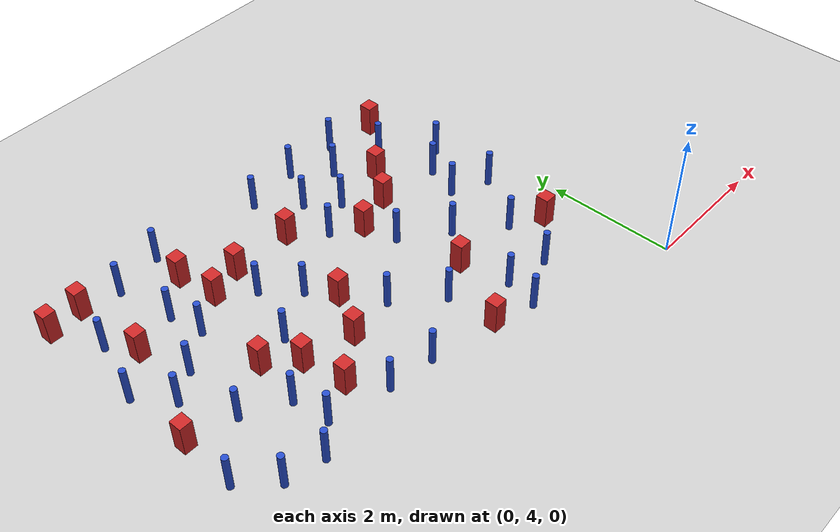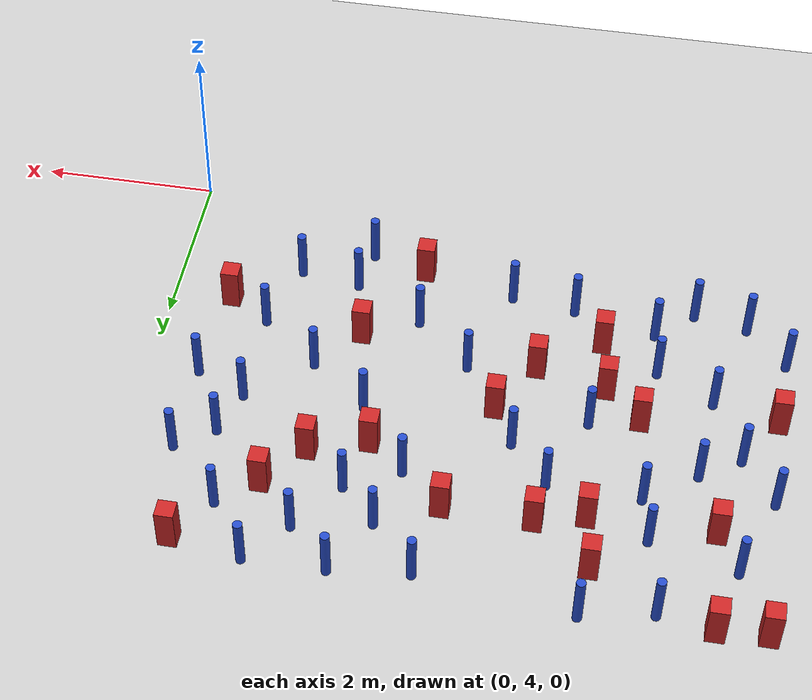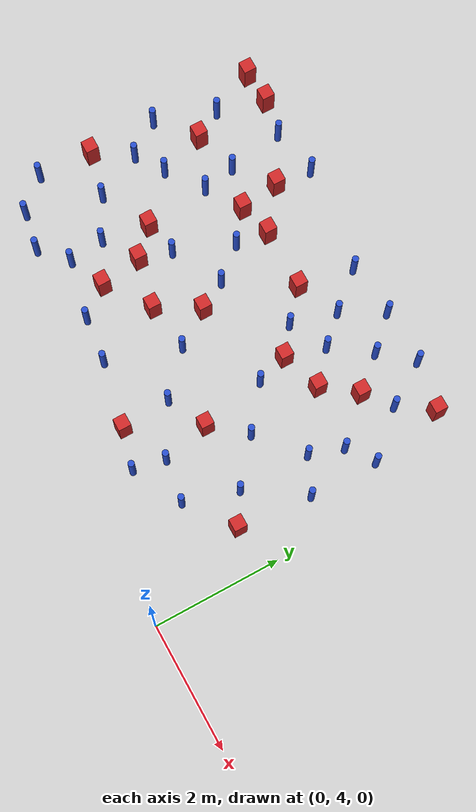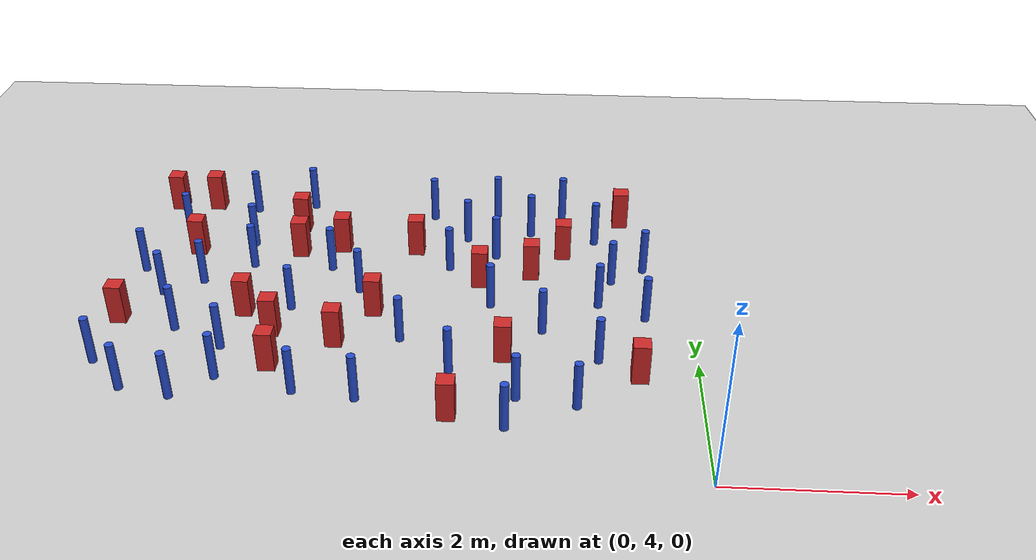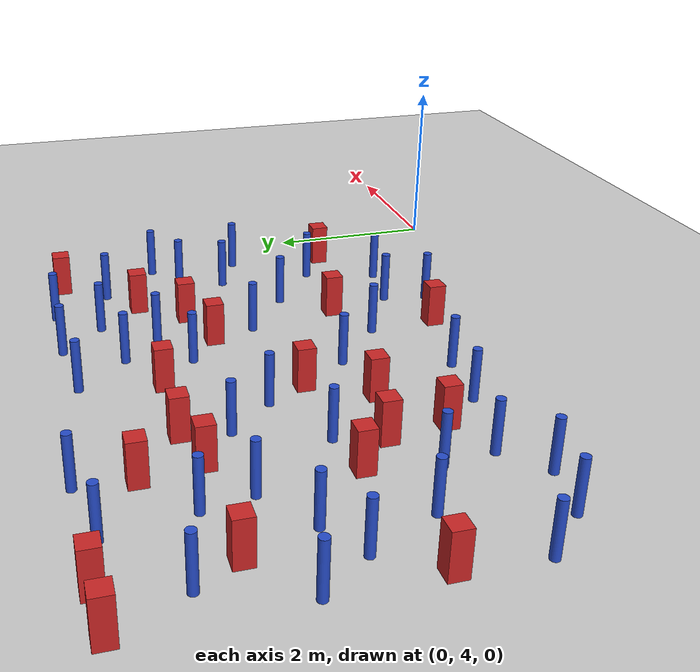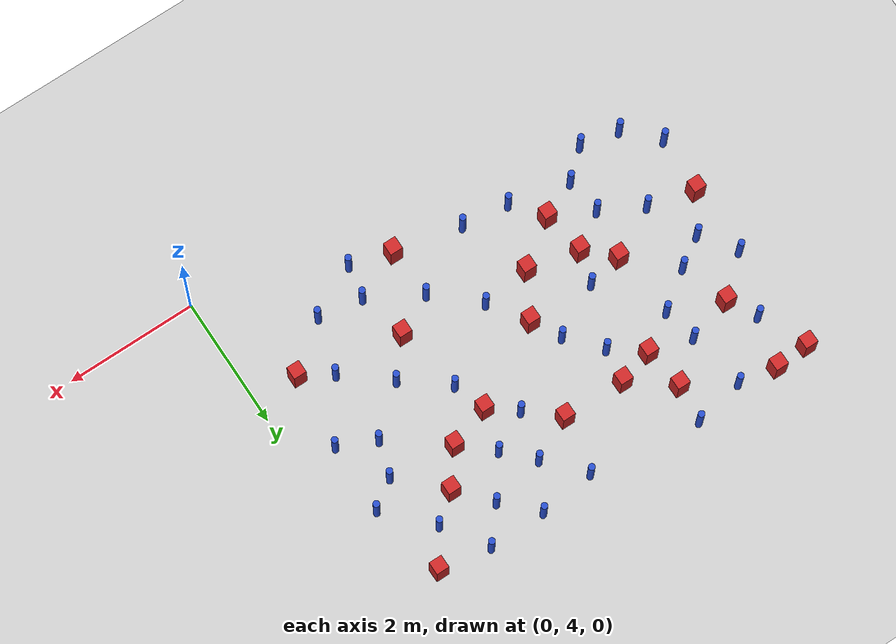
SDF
<sdf version="1.6">
 <world name="default">
  <model name="ground_plane">
   <static>1</static>
   <link name="link">
    <collision name="collision">
     <geometry><plane><normal>0 0 1</normal><size>100 100</size></plane></geometry>
     <surface><friction><ode><mu>100</mu><mu2>50</mu2></ode></friction></surface>
    </collision>
    <visual name="visual">
     <cast_shadows>0</cast_shadows>
     <geometry><plane><normal>0 0 1</normal><size>100 100</size></plane></geometry>
     <material>
      <ambient>1.0 1.0 1.0 1.0</ambient>
      <diffuse>0.8 0.8 0.8 1.0</diffuse>
      <specular>0.01 0.01 0.01 1.000000</specular>
     </material>
    </visual>
   </link>
  </model>
  <model name="pole_obstacle6">
   <static>true</static>
   <pose>-1.13884533249 6.00640084406 7.38925637345e-09 -8.47170692799e-08 1.24976765033e-08 -1.74513093018e-07</pose>
   <link name="link">
    <pose>0 0 0.3 0 -0 0</pose>
    <inertial>
     <mass>1</mass>
     <inertia><ixx>0.145833</ixx><ixy>0</ixy><ixz>0</ixz><iyy>0.145833</iyy><iyz>0</iyz><izz>0.125</izz></inertia>
    </inertial>
    <collision name="collision">
     <geometry><cylinder><radius>0.05</radius><length>.6</length></cylinder></geometry>
    </collision>
    <visual name="visual">
     <geometry><cylinder><radius>0.05</radius><length>.6</length></cylinder></geometry>
     <material>
      <script><name>Gazebo/Blue</name><uri>file://media/materials/scripts/gazebo.material</uri></script>
     </material>
    </visual>
   </link>
  </model>
  <model name="pole_obstacle17">
   <static>true</static>
   <pose>-5.87986602313 5.09642680176 7.38925637345e-09 -8.47170692796e-08 1.24976764786e-08 -1.74513093032e-07</pose>
   <link name="link">
    <pose>0 0 0.3 0 -0 0</pose>
    <inertial>
     <mass>1</mass>
     <inertia><ixx>0.145833</ixx><ixy>0</ixy><ixz>0</ixz><iyy>0.145833</iyy><iyz>0</iyz><izz>0.125</izz></inertia>
    </inertial>
    <collision name="collision">
     <geometry><cylinder><radius>0.05</radius><length>.6</length></cylinder></geometry>
    </collision>
    <visual name="visual">
     <geometry><cylinder><radius>0.05</radius><length>.6</length></cylinder></geometry>
     <material>
      <script><name>Gazebo/Blue</name><uri>file://media/materials/scripts/gazebo.material</uri></script>
     </material>
    </visual>
   </link>
  </model>
  <model name="pole_obstacle27">
   <static>true</static>
   <pose>-6.51548314377 7.11231519088 7.38925637345e-09 -8.47170692796e-08 1.24976764786e-08 -1.74513093032e-07</pose>
   <link name="link">
    <pose>0 0 0.3 0 -0 0</pose>
    <inertial>
     <mass>1</mass>
     <inertia><ixx>0.145833</ixx><ixy>0</ixy><ixz>0</ixz><iyy>0.145833</iyy><iyz>0</iyz><izz>0.125</izz></inertia>
    </inertial>
    <collision name="collision">
     <geometry><cylinder><radius>0.05</radius><length>.6</length></cylinder></geometry>
    </collision>
    <visual name="visual">
     <geometry><cylinder><radius>0.05</radius><length>.6</length></cylinder></geometry>
     <material>
      <script><name>Gazebo/Blue</name><uri>file://media/materials/scripts/gazebo.material</uri></script>
     </material>
    </visual>
   </link>
  </model>
  <model name="square_post_obstacle32">
   <static>true</static>
   <pose>-0.682173237768 5.71564779712 1.91545236811e-07 -7.35059704564e-06 1.12565212e-07 2.39332434364e-05</pose>
   <link name="link">
    <pose>0 0 0.25 0 -0 0</pose>
    <inertial>
     <mass>100</mass>
     <inertia>
      <ixx>0.166667</ixx>
      <ixy>0</ixy>
      <ixz>0</ixz>
      <iyy>0.166667</iyy>
      <iyz>0</iyz>
      <izz>0.166667</izz>
     </inertia>
    </inertial>
    <collision name="collision"><geometry><box><size>.2 .2 .5</size></box></geometry></collision>
    <visual name="visual">
     <geometry><box><size>.2 .2 .5</size></box></geometry>
     <material>
      <script><name>Gazebo/Red</name><uri>file://media/materials/scripts/gazebo.material</uri></script>
     </material>
    </visual>
   </link>
  </model>
  <model name="square_post_obstacle33">
   <static>true</static>
   <pose>-4.22268816906 6.20369908006 1.91545236811e-07 -7.35059704564e-06 1.12565212e-07 2.39332434364e-05</pose>
   <link name="link">
    <pose>0 0 0.25 0 -0 0</pose>
    <inertial>
     <mass>100</mass>
     <inertia>
      <ixx>0.166667</ixx>
      <ixy>0</ixy>
      <ixz>0</ixz>
      <iyy>0.166667</iyy>
      <iyz>0</iyz>
      <izz>0.166667</izz>
     </inertia>
    </inertial>
    <collision name="collision"><geometry><box><size>.2 .2 .5</size></box></geometry></collision>
    <visual name="visual">
     <geometry><box><size>.2 .2 .5</size></box></geometry>
     <material>
      <script><name>Gazebo/Red</name><uri>file://media/materials/scripts/gazebo.material</uri></script>
     </material>
    </visual>
   </link>
  </model>
  <model name="pole_obstacle29">
   <static>true</static>
   <pose>-6.56118129057 8.5687259054 7.38925637345e-09 -8.471706928e-08 1.24976765081e-08 -1.74513093015e-07</pose>
   <link name="link">
    <pose>0 0 0.3 0 -0 0</pose>
    <inertial>
     <mass>1</mass>
     <inertia><ixx>0.145833</ixx><ixy>0</ixy><ixz>0</ixz><iyy>0.145833</iyy><iyz>0</iyz><izz>0.125</izz></inertia>
    </inertial>
    <collision name="collision">
     <geometry><cylinder><radius>0.05</radius><length>.6</length></cylinder></geometry>
    </collision>
    <visual name="visual">
     <geometry><cylinder><radius>0.05</radius><length>.6</length></cylinder></geometry>
     <material>
      <script><name>Gazebo/Blue</name><uri>file://media/materials/scripts/gazebo.material</uri></script>
     </material>
    </visual>
   </link>
  </model>
  <model name="pole_obstacle32">
   <static>true</static>
   <pose>-3.82620133427 5.16682028042 7.38925637345e-09 -8.47170692798e-08 1.24976765033e-08 -1.74513093019e-07</pose>
   <link name="link">
    <pose>0 0 0.3 0 -0 0</pose>
    <inertial>
     <mass>1</mass>
     <inertia><ixx>0.145833</ixx><ixy>0</ixy><ixz>0</ixz><iyy>0.145833</iyy><iyz>0</iyz><izz>0.125</izz></inertia>
    </inertial>
    <collision name="collision">
     <geometry><cylinder><radius>0.05</radius><length>.6</length></cylinder></geometry>
    </collision>
    <visual name="visual">
     <geometry><cylinder><radius>0.05</radius><length>.6</length></cylinder></geometry>
     <material>
      <script><name>Gazebo/Blue</name><uri>file://media/materials/scripts/gazebo.material</uri></script>
     </material>
    </visual>
   </link>
  </model>
  <model name="pole_obstacle44">
   <static>true</static>
   <pose>-4.50960013686 7.79032409078 7.38925637345e-09 -8.47170692796e-08 1.24976764786e-08 -1.74513093032e-07</pose>
   <link name="link">
    <pose>0 0 0.3 0 -0 0</pose>
    <inertial>
     <mass>1</mass>
     <inertia><ixx>0.145833</ixx><ixy>0</ixy><ixz>0</ixz><iyy>0.145833</iyy><iyz>0</iyz><izz>0.125</izz></inertia>
    </inertial>
    <collision name="collision">
     <geometry><cylinder><radius>0.05</radius><length>.6</length></cylinder></geometry>
    </collision>
    <visual name="visual">
     <geometry><cylinder><radius>0.05</radius><length>.6</length></cylinder></geometry>
     <material>
      <script><name>Gazebo/Blue</name><uri>file://media/materials/scripts/gazebo.material</uri></script>
     </material>
    </visual>
   </link>
  </model>
  <model name="square_post_obstacle43">
   <static>true</static>
   <pose>-5.40889203674 6.76834407915 1.91545236811e-07 -7.35059704564e-06 1.12565212e-07 2.39332434364e-05</pose>
   <link name="link">
    <pose>0 0 0.25 0 -0 0</pose>
    <inertial>
     <mass>100</mass>
     <inertia>
      <ixx>0.166667</ixx>
      <ixy>0</ixy>
      <ixz>0</ixz>
      <iyy>0.166667</iyy>
      <iyz>0</iyz>
      <izz>0.166667</izz>
     </inertia>
    </inertial>
    <collision name="collision"><geometry><box><size>.2 .2 .5</size></box></geometry></collision>
    <visual name="visual">
     <geometry><box><size>.2 .2 .5</size></box></geometry>
     <material>
      <script><name>Gazebo/Red</name><uri>file://media/materials/scripts/gazebo.material</uri></script>
     </material>
    </visual>
   </link>
  </model>
  <model name="pole_obstacle49">
   <static>true</static>
   <pose>-6.92528283574 5.68423858013 7.38925637345e-09 -8.47170692796e-08 1.24976764786e-08 -1.74513093032e-07</pose>
   <link name="link">
    <pose>0 0 0.3 0 -0 0</pose>
    <inertial>
     <mass>1</mass>
     <inertia><ixx>0.145833</ixx><ixy>0</ixy><ixz>0</ixz><iyy>0.145833</iyy><iyz>0</iyz><izz>0.125</izz></inertia>
    </inertial>
    <collision name="collision">
     <geometry><cylinder><radius>0.05</radius><length>.6</length></cylinder></geometry>
    </collision>
    <visual name="visual">
     <geometry><cylinder><radius>0.05</radius><length>.6</length></cylinder></geometry>
     <material>
      <script><name>Gazebo/Blue</name><uri>file://media/materials/scripts/gazebo.material</uri></script>
     </material>
    </visual>
   </link>
  </model>
  <model name="square_post_obstacle56">
   <static>true</static>
   <pose>-5.00658708489 6.38060278428 1.91545236811e-07 -7.35059704564e-06 1.12565212e-07 2.39332434364e-05</pose>
   <link name="link">
    <pose>0 0 0.25 0 -0 0</pose>
    <inertial>
     <mass>100</mass>
     <inertia>
      <ixx>0.166667</ixx>
      <ixy>0</ixy>
      <ixz>0</ixz>
      <iyy>0.166667</iyy>
      <iyz>0</iyz>
      <izz>0.166667</izz>
     </inertia>
    </inertial>
    <collision name="collision"><geometry><box><size>.2 .2 .5</size></box></geometry></collision>
    <visual name="visual">
     <geometry><box><size>.2 .2 .5</size></box></geometry>
     <material>
      <script><name>Gazebo/Red</name><uri>file://media/materials/scripts/gazebo.material</uri></script>
     </material>
    </visual>
   </link>
  </model>
  <model name="pole_obstacle58">
   <static>true</static>
   <pose>-2.82783120519 8.59757847024 7.38925637345e-09 -8.47170692793e-08 1.24976764408e-08 -1.74513093041e-07</pose>
   <link name="link">
    <pose>0 0 0.3 0 -0 0</pose>
    <inertial>
     <mass>1</mass>
     <inertia><ixx>0.145833</ixx><ixy>0</ixy><ixz>0</ixz><iyy>0.145833</iyy><iyz>0</iyz><izz>0.125</izz></inertia>
    </inertial>
    <collision name="collision">
     <geometry><cylinder><radius>0.05</radius><length>.6</length></cylinder></geometry>
    </collision>
    <visual name="visual">
     <geometry><cylinder><radius>0.05</radius><length>.6</length></cylinder></geometry>
     <material>
      <script><name>Gazebo/Blue</name><uri>file://media/materials/scripts/gazebo.material</uri></script>
     </material>
    </visual>
   </link>
  </model>
  <model name="square_post_obstacle64">
   <static>true</static>
   <pose>-2.60371157724 7.55640820449 1.91545236811e-07 -7.35059704564e-06 1.12565212e-07 2.39332434364e-05</pose>
   <link name="link">
    <pose>0 0 0.25 0 -0 0</pose>
    <inertial>
     <mass>100</mass>
     <inertia>
      <ixx>0.166667</ixx>
      <ixy>0</ixy>
      <ixz>0</ixz>
      <iyy>0.166667</iyy>
      <iyz>0</iyz>
      <izz>0.166667</izz>
     </inertia>
    </inertial>
    <collision name="collision"><geometry><box><size>.2 .2 .5</size></box></geometry></collision>
    <visual name="visual">
     <geometry><box><size>.2 .2 .5</size></box></geometry>
     <material>
      <script><name>Gazebo/Red</name><uri>file://media/materials/scripts/gazebo.material</uri></script>
     </material>
    </visual>
   </link>
  </model>
  <model name="square_post_obstacle66">
   <static>true</static>
   <pose>-1.57315942391 8.276207866 1.91545236811e-07 -7.35059704564e-06 1.12565212e-07 2.39332434364e-05</pose>
   <link name="link">
    <pose>0 0 0.25 0 -0 0</pose>
    <inertial>
     <mass>100</mass>
     <inertia>
      <ixx>0.166667</ixx>
      <ixy>0</ixy>
      <ixz>0</ixz>
      <iyy>0.166667</iyy>
      <iyz>0</iyz>
      <izz>0.166667</izz>
     </inertia>
    </inertial>
    <collision name="collision"><geometry><box><size>.2 .2 .5</size></box></geometry></collision>
    <visual name="visual">
     <geometry><box><size>.2 .2 .5</size></box></geometry>
     <material>
      <script><name>Gazebo/Red</name><uri>file://media/materials/scripts/gazebo.material</uri></script>
     </material>
    </visual>
   </link>
  </model>
  <model name="pole_obstacle65">
   <static>true</static>
   <pose>-5.7784749312 9.21658165933 7.38925637345e-09 -8.471706928e-08 1.24976765081e-08 -1.74513093015e-07</pose>
   <link name="link">
    <pose>0 0 0.3 0 -0 0</pose>
    <inertial>
     <mass>1</mass>
     <inertia><ixx>0.145833</ixx><ixy>0</ixy><ixz>0</ixz><iyy>0.145833</iyy><iyz>0</iyz><izz>0.125</izz></inertia>
    </inertial>
    <collision name="collision">
     <geometry><cylinder><radius>0.05</radius><length>.6</length></cylinder></geometry>
    </collision>
    <visual name="visual">
     <geometry><cylinder><radius>0.05</radius><length>.6</length></cylinder></geometry>
     <material>
      <script><name>Gazebo/Blue</name><uri>file://media/materials/scripts/gazebo.material</uri></script>
     </material>
    </visual>
   </link>
  </model>
  <model name="pole_obstacle68">
   <static>true</static>
   <pose>-5.62413219068 8.32864449254 7.38925637345e-09 -8.471706928e-08 1.24976765081e-08 -1.74513093015e-07</pose>
   <link name="link">
    <pose>0 0 0.3 0 -0 0</pose>
    <inertial>
     <mass>1</mass>
     <inertia><ixx>0.145833</ixx><ixy>0</ixy><ixz>0</ixz><iyy>0.145833</iyy><iyz>0</iyz><izz>0.125</izz></inertia>
    </inertial>
    <collision name="collision">
     <geometry><cylinder><radius>0.05</radius><length>.6</length></cylinder></geometry>
    </collision>
    <visual name="visual">
     <geometry><cylinder><radius>0.05</radius><length>.6</length></cylinder></geometry>
     <material>
      <script><name>Gazebo/Blue</name><uri>file://media/materials/scripts/gazebo.material</uri></script>
     </material>
    </visual>
   </link>
  </model>
  <model name="pole_obstacle76">
   <static>true</static>
   <pose>-1.99838171747 8.77394415467 7.38925637345e-09 -8.47170692797e-08 1.24976764886e-08 -1.74513093027e-07</pose>
   <link name="link">
    <pose>0 0 0.3 0 -0 0</pose>
    <inertial>
     <mass>1</mass>
     <inertia><ixx>0.145833</ixx><ixy>0</ixy><ixz>0</ixz><iyy>0.145833</iyy><iyz>0</iyz><izz>0.125</izz></inertia>
    </inertial>
    <collision name="collision">
     <geometry><cylinder><radius>0.05</radius><length>.6</length></cylinder></geometry>
    </collision>
    <visual name="visual">
     <geometry><cylinder><radius>0.05</radius><length>.6</length></cylinder></geometry>
     <material>
      <script><name>Gazebo/Blue</name><uri>file://media/materials/scripts/gazebo.material</uri></script>
     </material>
    </visual>
   </link>
  </model>
  <model name="square_post_obstacle77">
   <static>true</static>
   <pose>-2.79258658505 4.94894404186 1.91545236811e-07 -7.35059704564e-06 1.12565212e-07 2.39332434364e-05</pose>
   <link name="link">
    <pose>0 0 0.25 0 -0 0</pose>
    <inertial>
     <mass>100</mass>
     <inertia>
      <ixx>0.166667</ixx>
      <ixy>0</ixy>
      <ixz>0</ixz>
      <iyy>0.166667</iyy>
      <iyz>0</iyz>
      <izz>0.166667</izz>
     </inertia>
    </inertial>
    <collision name="collision"><geometry><box><size>.2 .2 .5</size></box></geometry></collision>
    <visual name="visual">
     <geometry><box><size>.2 .2 .5</size></box></geometry>
     <material>
      <script><name>Gazebo/Red</name><uri>file://media/materials/scripts/gazebo.material</uri></script>
     </material>
    </visual>
   </link>
  </model>
  <model name="square_post_obstacle79">
   <static>true</static>
   <pose>-3.47526842599 8.28174946734 1.91545236811e-07 -7.35059704564e-06 1.12565212e-07 2.39332434364e-05</pose>
   <link name="link">
    <pose>0 0 0.25 0 -0 0</pose>
    <inertial>
     <mass>100</mass>
     <inertia>
      <ixx>0.166667</ixx>
      <ixy>0</ixy>
      <ixz>0</ixz>
      <iyy>0.166667</iyy>
      <iyz>0</iyz>
      <izz>0.166667</izz>
     </inertia>
    </inertial>
    <collision name="collision"><geometry><box><size>.2 .2 .5</size></box></geometry></collision>
    <visual name="visual">
     <geometry><box><size>.2 .2 .5</size></box></geometry>
     <material>
      <script><name>Gazebo/Red</name><uri>file://media/materials/scripts/gazebo.material</uri></script>
     </material>
    </visual>
   </link>
  </model>
  <model name="pole_obstacle82">
   <static>true</static>
   <pose>-6.16802672329 6.37050134223 7.38925637345e-09 -8.47170692796e-08 1.24976764786e-08 -1.74513093032e-07</pose>
   <link name="link">
    <pose>0 0 0.3 0 -0 0</pose>
    <inertial>
     <mass>1</mass>
     <inertia><ixx>0.145833</ixx><ixy>0</ixy><ixz>0</ixz><iyy>0.145833</iyy><iyz>0</iyz><izz>0.125</izz></inertia>
    </inertial>
    <collision name="collision">
     <geometry><cylinder><radius>0.05</radius><length>.6</length></cylinder></geometry>
    </collision>
    <visual name="visual">
     <geometry><cylinder><radius>0.05</radius><length>.6</length></cylinder></geometry>
     <material>
      <script><name>Gazebo/Blue</name><uri>file://media/materials/scripts/gazebo.material</uri></script>
     </material>
    </visual>
   </link>
  </model>
  <model name="square_post_obstacle83">
   <static>true</static>
   <pose>-0.810591307809 9.12485963482 1.91545236811e-07 -7.35059704564e-06 1.12565212e-07 2.39332434364e-05</pose>
   <link name="link">
    <pose>0 0 0.25 0 -0 0</pose>
    <inertial>
     <mass>100</mass>
     <inertia>
      <ixx>0.166667</ixx>
      <ixy>0</ixy>
      <ixz>0</ixz>
      <iyy>0.166667</iyy>
      <iyz>0</iyz>
      <izz>0.166667</izz>
     </inertia>
    </inertial>
    <collision name="collision"><geometry><box><size>.2 .2 .5</size></box></geometry></collision>
    <visual name="visual">
     <geometry><box><size>.2 .2 .5</size></box></geometry>
     <material>
      <script><name>Gazebo/Red</name><uri>file://media/materials/scripts/gazebo.material</uri></script>
     </material>
    </visual>
   </link>
  </model>
  <model name="pole_obstacle118">
   <static>true</static>
   <pose>-4.08687819816 7.29918859179 7.38925637345e-09 -8.47170692796e-08 1.24976764786e-08 -1.74513093032e-07</pose>
   <link name="link">
    <pose>0 0 0.3 0 -0 0</pose>
    <inertial>
     <mass>1</mass>
     <inertia><ixx>0.145833</ixx><ixy>0</ixy><ixz>0</ixz><iyy>0.145833</iyy><iyz>0</iyz><izz>0.125</izz></inertia>
    </inertial>
    <collision name="collision">
     <geometry><cylinder><radius>0.05</radius><length>.6</length></cylinder></geometry>
    </collision>
    <visual name="visual">
     <geometry><cylinder><radius>0.05</radius><length>.6</length></cylinder></geometry>
     <material>
      <script><name>Gazebo/Blue</name><uri>file://media/materials/scripts/gazebo.material</uri></script>
     </material>
    </visual>
   </link>
  </model>
  <model name="square_post_obstacle104">
   <static>true</static>
   <pose>-4.43977478486 8.29522739074 1.91545236811e-07 -7.35059704564e-06 1.12565212e-07 2.39332434364e-05</pose>
   <link name="link">
    <pose>0 0 0.25 0 -0 0</pose>
    <inertial>
     <mass>100</mass>
     <inertia>
      <ixx>0.166667</ixx>
      <ixy>0</ixy>
      <ixz>0</ixz>
      <iyy>0.166667</iyy>
      <iyz>0</iyz>
      <izz>0.166667</izz>
     </inertia>
    </inertial>
    <collision name="collision"><geometry><box><size>.2 .2 .5</size></box></geometry></collision>
    <visual name="visual">
     <geometry><box><size>.2 .2 .5</size></box></geometry>
     <material>
      <script><name>Gazebo/Red</name><uri>file://media/materials/scripts/gazebo.material</uri></script>
     </material>
    </visual>
   </link>
  </model>
  <model name="square_post_obstacle108">
   <static>true</static>
   <pose>-6.87936138806 6.54421704036 1.91545236811e-07 -7.35059704564e-06 1.12565212e-07 2.39332434364e-05</pose>
   <link name="link">
    <pose>0 0 0.25 0 -0 0</pose>
    <inertial>
     <mass>100</mass>
     <inertia>
      <ixx>0.166667</ixx>
      <ixy>0</ixy>
      <ixz>0</ixz>
      <iyy>0.166667</iyy>
      <iyz>0</iyz>
      <izz>0.166667</izz>
     </inertia>
    </inertial>
    <collision name="collision"><geometry><box><size>.2 .2 .5</size></box></geometry></collision>
    <visual name="visual">
     <geometry><box><size>.2 .2 .5</size></box></geometry>
     <material>
      <script><name>Gazebo/Red</name><uri>file://media/materials/scripts/gazebo.material</uri></script>
     </material>
    </visual>
   </link>
  </model>
  <model name="square_post_obstacle111">
   <static>true</static>
   <pose>-4.97311083903 8.15002786722 1.91545236811e-07 -7.35059704564e-06 1.12565212e-07 2.39332434364e-05</pose>
   <link name="link">
    <pose>0 0 0.25 0 -0 0</pose>
    <inertial>
     <mass>100</mass>
     <inertia>
      <ixx>0.166667</ixx>
      <ixy>0</ixy>
      <ixz>0</ixz>
      <iyy>0.166667</iyy>
      <iyz>0</iyz>
      <izz>0.166667</izz>
     </inertia>
    </inertial>
    <collision name="collision"><geometry><box><size>.2 .2 .5</size></box></geometry></collision>
    <visual name="visual">
     <geometry><box><size>.2 .2 .5</size></box></geometry>
     <material>
      <script><name>Gazebo/Red</name><uri>file://media/materials/scripts/gazebo.material</uri></script>
     </material>
    </visual>
   </link>
  </model>
  <model name="pole_obstacle121">
   <static>true</static>
   <pose>-2.06098376952 5.27774926588 7.38925637345e-09 -8.47170692798e-08 1.24976765033e-08 -1.74513093019e-07</pose>
   <link name="link">
    <pose>0 0 0.3 0 -0 0</pose>
    <inertial>
     <mass>1</mass>
     <inertia><ixx>0.145833</ixx><ixy>0</ixy><ixz>0</ixz><iyy>0.145833</iyy><iyz>0</iyz><izz>0.125</izz></inertia>
    </inertial>
    <collision name="collision">
     <geometry><cylinder><radius>0.05</radius><length>.6</length></cylinder></geometry>
    </collision>
    <visual name="visual">
     <geometry><cylinder><radius>0.05</radius><length>.6</length></cylinder></geometry>
     <material>
      <script><name>Gazebo/Blue</name><uri>file://media/materials/scripts/gazebo.material</uri></script>
     </material>
    </visual>
   </link>
  </model>
  <model name="pole_obstacle124">
   <static>true</static>
   <pose>-1.1556804983 8.61058792297 7.38925637345e-09 -8.47170692798e-08 1.24976764881e-08 -1.74513093027e-07</pose>
   <link name="link">
    <pose>0 0 0.3 0 -0 0</pose>
    <inertial>
     <mass>1</mass>
     <inertia><ixx>0.145833</ixx><ixy>0</ixy><ixz>0</ixz><iyy>0.145833</iyy><iyz>0</iyz><izz>0.125</izz></inertia>
    </inertial>
    <collision name="collision">
     <geometry><cylinder><radius>0.05</radius><length>.6</length></cylinder></geometry>
    </collision>
    <visual name="visual">
     <geometry><cylinder><radius>0.05</radius><length>.6</length></cylinder></geometry>
     <material>
      <script><name>Gazebo/Blue</name><uri>file://media/materials/scripts/gazebo.material</uri></script>
     </material>
    </visual>
   </link>
  </model>
  <model name="pole_obstacle125">
   <static>true</static>
   <pose>-6.88834465642 7.63098107103 7.38925637345e-09 -8.47170692796e-08 1.24976764786e-08 -1.74513093032e-07</pose>
   <link name="link">
    <pose>0 0 0.3 0 -0 0</pose>
    <inertial>
     <mass>1</mass>
     <inertia><ixx>0.145833</ixx><ixy>0</ixy><ixz>0</ixz><iyy>0.145833</iyy><iyz>0</iyz><izz>0.125</izz></inertia>
    </inertial>
    <collision name="collision">
     <geometry><cylinder><radius>0.05</radius><length>.6</length></cylinder></geometry>
    </collision>
    <visual name="visual">
     <geometry><cylinder><radius>0.05</radius><length>.6</length></cylinder></geometry>
     <material>
      <script><name>Gazebo/Blue</name><uri>file://media/materials/scripts/gazebo.material</uri></script>
     </material>
    </visual>
   </link>
  </model>
  <model name="pole_obstacle130">
   <static>true</static>
   <pose>-3.31956122975 9.15283374948 7.38925637345e-09 -8.47170692793e-08 1.24976764408e-08 -1.74513093041e-07</pose>
   <link name="link">
    <pose>0 0 0.3 0 -0 0</pose>
    <inertial>
     <mass>1</mass>
     <inertia><ixx>0.145833</ixx><ixy>0</ixy><ixz>0</ixz><iyy>0.145833</iyy><iyz>0</iyz><izz>0.125</izz></inertia>
    </inertial>
    <collision name="collision">
     <geometry><cylinder><radius>0.05</radius><length>.6</length></cylinder></geometry>
    </collision>
    <visual name="visual">
     <geometry><cylinder><radius>0.05</radius><length>.6</length></cylinder></geometry>
     <material>
      <script><name>Gazebo/Blue</name><uri>file://media/materials/scripts/gazebo.material</uri></script>
     </material>
    </visual>
   </link>
  </model>
  <model name="pole_obstacle134">
   <static>true</static>
   <pose>-5.01243282055 9.36613757884 7.38925637345e-09 -8.471706928e-08 1.24976765081e-08 -1.74513093015e-07</pose>
   <link name="link">
    <pose>0 0 0.3 0 -0 0</pose>
    <inertial>
     <mass>1</mass>
     <inertia><ixx>0.145833</ixx><ixy>0</ixy><ixz>0</ixz><iyy>0.145833</iyy><iyz>0</iyz><izz>0.125</izz></inertia>
    </inertial>
    <collision name="collision">
     <geometry><cylinder><radius>0.05</radius><length>.6</length></cylinder></geometry>
    </collision>
    <visual name="visual">
     <geometry><cylinder><radius>0.05</radius><length>.6</length></cylinder></geometry>
     <material>
      <script><name>Gazebo/Blue</name><uri>file://media/materials/scripts/gazebo.material</uri></script>
     </material>
    </visual>
   </link>
  </model>
  <model name="pole_obstacle138">
   <static>true</static>
   <pose>-6.07867521664 7.39769607448 7.38925637345e-09 -8.47170692796e-08 1.24976764786e-08 -1.74513093032e-07</pose>
   <link name="link">
    <pose>0 0 0.3 0 -0 0</pose>
    <inertial>
     <mass>1</mass>
     <inertia><ixx>0.145833</ixx><ixy>0</ixy><ixz>0</ixz><iyy>0.145833</iyy><iyz>0</iyz><izz>0.125</izz></inertia>
    </inertial>
    <collision name="collision">
     <geometry><cylinder><radius>0.05</radius><length>.6</length></cylinder></geometry>
    </collision>
    <visual name="visual">
     <geometry><cylinder><radius>0.05</radius><length>.6</length></cylinder></geometry>
     <material>
      <script><name>Gazebo/Blue</name><uri>file://media/materials/scripts/gazebo.material</uri></script>
     </material>
    </visual>
   </link>
  </model>
  <model name="square_post_obstacle122">
   <static>true</static>
   <pose>-5.06567525563 8.78532850668 1.91545236811e-07 -7.35059704564e-06 1.12565212e-07 2.39332434364e-05</pose>
   <link name="link">
    <pose>0 0 0.25 0 -0 0</pose>
    <inertial>
     <mass>100</mass>
     <inertia>
      <ixx>0.166667</ixx>
      <ixy>0</ixy>
      <ixz>0</ixz>
      <iyy>0.166667</iyy>
      <iyz>0</iyz>
      <izz>0.166667</izz>
     </inertia>
    </inertial>
    <collision name="collision"><geometry><box><size>.2 .2 .5</size></box></geometry></collision>
    <visual name="visual">
     <geometry><box><size>.2 .2 .5</size></box></geometry>
     <material>
      <script><name>Gazebo/Red</name><uri>file://media/materials/scripts/gazebo.material</uri></script>
     </material>
    </visual>
   </link>
  </model>
  <model name="pole_obstacle142">
   <static>true</static>
   <pose>-5.52175535244 7.80500488019 7.38925637345e-09 -8.47170692796e-08 1.24976764786e-08 -1.74513093032e-07</pose>
   <link name="link">
    <pose>0 0 0.3 0 -0 0</pose>
    <inertial>
     <mass>1</mass>
     <inertia><ixx>0.145833</ixx><ixy>0</ixy><ixz>0</ixz><iyy>0.145833</iyy><iyz>0</iyz><izz>0.125</izz></inertia>
    </inertial>
    <collision name="collision">
     <geometry><cylinder><radius>0.05</radius><length>.6</length></cylinder></geometry>
    </collision>
    <visual name="visual">
     <geometry><cylinder><radius>0.05</radius><length>.6</length></cylinder></geometry>
     <material>
      <script><name>Gazebo/Blue</name><uri>file://media/materials/scripts/gazebo.material</uri></script>
     </material>
    </visual>
   </link>
  </model>
  <model name="pole_obstacle147">
   <static>true</static>
   <pose>-5.46323063522 5.47036744371 7.38925637345e-09 -8.47170692796e-08 1.24976764786e-08 -1.74513093032e-07</pose>
   <link name="link">
    <pose>0 0 0.3 0 -0 0</pose>
    <inertial>
     <mass>1</mass>
     <inertia><ixx>0.145833</ixx><ixy>0</ixy><ixz>0</ixz><iyy>0.145833</iyy><iyz>0</iyz><izz>0.125</izz></inertia>
    </inertial>
    <collision name="collision">
     <geometry><cylinder><radius>0.05</radius><length>.6</length></cylinder></geometry>
    </collision>
    <visual name="visual">
     <geometry><cylinder><radius>0.05</radius><length>.6</length></cylinder></geometry>
     <material>
      <script><name>Gazebo/Blue</name><uri>file://media/materials/scripts/gazebo.material</uri></script>
     </material>
    </visual>
   </link>
  </model>
  <model name="square_post_obstacle138">
   <static>true</static>
   <pose>-3.84605636096 6.8583834936 1.91545236811e-07 -7.35059704564e-06 1.12565212e-07 2.39332434364e-05</pose>
   <link name="link">
    <pose>0 0 0.25 0 -0 0</pose>
    <inertial>
     <mass>100</mass>
     <inertia>
      <ixx>0.166667</ixx>
      <ixy>0</ixy>
      <ixz>0</ixz>
      <iyy>0.166667</iyy>
      <iyz>0</iyz>
      <izz>0.166667</izz>
     </inertia>
    </inertial>
    <collision name="collision"><geometry><box><size>.2 .2 .5</size></box></geometry></collision>
    <visual name="visual">
     <geometry><box><size>.2 .2 .5</size></box></geometry>
     <material>
      <script><name>Gazebo/Red</name><uri>file://media/materials/scripts/gazebo.material</uri></script>
     </material>
    </visual>
   </link>
  </model>
  <model name="square_post_obstacle143">
   <static>true</static>
   <pose>-6.36199760315 9.31768818904 1.91545236811e-07 -7.35059704564e-06 1.12565212e-07 2.39332434364e-05</pose>
   <link name="link">
    <pose>0 0 0.25 0 -0 0</pose>
    <inertial>
     <mass>100</mass>
     <inertia>
      <ixx>0.166667</ixx>
      <ixy>0</ixy>
      <ixz>0</ixz>
      <iyy>0.166667</iyy>
      <iyz>0</iyz>
      <izz>0.166667</izz>
     </inertia>
    </inertial>
    <collision name="collision"><geometry><box><size>.2 .2 .5</size></box></geometry></collision>
    <visual name="visual">
     <geometry><box><size>.2 .2 .5</size></box></geometry>
     <material>
      <script><name>Gazebo/Red</name><uri>file://media/materials/scripts/gazebo.material</uri></script>
     </material>
    </visual>
   </link>
  </model>
  <model name="pole_obstacle156">
   <static>true</static>
   <pose>-2.84064937997 5.7282597873 7.38925637345e-09 -8.47170692798e-08 1.24976765033e-08 -1.74513093019e-07</pose>
   <link name="link">
    <pose>0 0 0.3 0 -0 0</pose>
    <inertial>
     <mass>1</mass>
     <inertia><ixx>0.145833</ixx><ixy>0</ixy><ixz>0</ixz><iyy>0.145833</iyy><iyz>0</iyz><izz>0.125</izz></inertia>
    </inertial>
    <collision name="collision">
     <geometry><cylinder><radius>0.05</radius><length>.6</length></cylinder></geometry>
    </collision>
    <visual name="visual">
     <geometry><cylinder><radius>0.05</radius><length>.6</length></cylinder></geometry>
     <material>
      <script><name>Gazebo/Blue</name><uri>file://media/materials/scripts/gazebo.material</uri></script>
     </material>
    </visual>
   </link>
  </model>
  <model name="square_post_obstacle147">
   <static>true</static>
   <pose>-6.31576094584 8.12589959222 1.91545236811e-07 -7.35059704564e-06 1.12565212e-07 2.39332434364e-05</pose>
   <link name="link">
    <pose>0 0 0.25 0 -0 0</pose>
    <inertial>
     <mass>100</mass>
     <inertia>
      <ixx>0.166667</ixx>
      <ixy>0</ixy>
      <ixz>0</ixz>
      <iyy>0.166667</iyy>
      <iyz>0</iyz>
      <izz>0.166667</izz>
     </inertia>
    </inertial>
    <collision name="collision"><geometry><box><size>.2 .2 .5</size></box></geometry></collision>
    <visual name="visual">
     <geometry><box><size>.2 .2 .5</size></box></geometry>
     <material>
      <script><name>Gazebo/Red</name><uri>file://media/materials/scripts/gazebo.material</uri></script>
     </material>
    </visual>
   </link>
  </model>
  <model name="square_post_obstacle151">
   <static>true</static>
   <pose>-2.24129650125 6.0259198513 1.91545236811e-07 -7.35059704564e-06 1.12565212e-07 2.39332434364e-05</pose>
   <link name="link">
    <pose>0 0 0.25 0 -0 0</pose>
    <inertial>
     <mass>100</mass>
     <inertia>
      <ixx>0.166667</ixx>
      <ixy>0</ixy>
      <ixz>0</ixz>
      <iyy>0.166667</iyy>
      <iyz>0</iyz>
      <izz>0.166667</izz>
     </inertia>
    </inertial>
    <collision name="collision"><geometry><box><size>.2 .2 .5</size></box></geometry></collision>
    <visual name="visual">
     <geometry><box><size>.2 .2 .5</size></box></geometry>
     <material>
      <script><name>Gazebo/Red</name><uri>file://media/materials/scripts/gazebo.material</uri></script>
     </material>
    </visual>
   </link>
  </model>
  <model name="pole_obstacle157">
   <static>true</static>
   <pose>-4.54331546318 5.2555426441 7.38925637345e-09 -8.47170692796e-08 1.24976764786e-08 -1.74513093032e-07</pose>
   <link name="link">
    <pose>0 0 0.3 0 -0 0</pose>
    <inertial>
     <mass>1</mass>
     <inertia><ixx>0.145833</ixx><ixy>0</ixy><ixz>0</ixz><iyy>0.145833</iyy><iyz>0</iyz><izz>0.125</izz></inertia>
    </inertial>
    <collision name="collision">
     <geometry><cylinder><radius>0.05</radius><length>.6</length></cylinder></geometry>
    </collision>
    <visual name="visual">
     <geometry><cylinder><radius>0.05</radius><length>.6</length></cylinder></geometry>
     <material>
      <script><name>Gazebo/Blue</name><uri>file://media/materials/scripts/gazebo.material</uri></script>
     </material>
    </visual>
   </link>
  </model>
  <model name="pole_obstacle167">
   <static>true</static>
   <pose>-0.566475502551 6.87211024993 7.38925637345e-09 -8.471706928e-08 1.24976765086e-08 -1.74513093015e-07</pose>
   <link name="link">
    <pose>0 0 0.3 0 -0 0</pose>
    <inertial>
     <mass>1</mass>
     <inertia><ixx>0.145833</ixx><ixy>0</ixy><ixz>0</ixz><iyy>0.145833</iyy><iyz>0</iyz><izz>0.125</izz></inertia>
    </inertial>
    <collision name="collision">
     <geometry><cylinder><radius>0.05</radius><length>.6</length></cylinder></geometry>
    </collision>
    <visual name="visual">
     <geometry><cylinder><radius>0.05</radius><length>.6</length></cylinder></geometry>
     <material>
      <script><name>Gazebo/Blue</name><uri>file://media/materials/scripts/gazebo.material</uri></script>
     </material>
    </visual>
   </link>
  </model>
  <model name="pole_obstacle172">
   <static>true</static>
   <pose>-2.16004226039 4.77153796678 7.38925637345e-09 -8.47170692798e-08 1.24976765033e-08 -1.74513093019e-07</pose>
   <link name="link">
    <pose>0 0 0.3 0 -0 0</pose>
    <inertial>
     <mass>1</mass>
     <inertia><ixx>0.145833</ixx><ixy>0</ixy><ixz>0</ixz><iyy>0.145833</iyy><iyz>0</iyz><izz>0.125</izz></inertia>
    </inertial>
    <collision name="collision">
     <geometry><cylinder><radius>0.05</radius><length>.6</length></cylinder></geometry>
    </collision>
    <visual name="visual">
     <geometry><cylinder><radius>0.05</radius><length>.6</length></cylinder></geometry>
     <material>
      <script><name>Gazebo/Blue</name><uri>file://media/materials/scripts/gazebo.material</uri></script>
     </material>
    </visual>
   </link>
  </model>
  <model name="pole_obstacle175">
   <static>true</static>
   <pose>-0.95672977006 7.66019634124 7.38925637345e-09 -8.47170692799e-08 1.2497676509e-08 -1.74513093015e-07</pose>
   <link name="link">
    <pose>0 0 0.3 0 -0 0</pose>
    <inertial>
     <mass>1</mass>
     <inertia><ixx>0.145833</ixx><ixy>0</ixy><ixz>0</ixz><iyy>0.145833</iyy><iyz>0</iyz><izz>0.125</izz></inertia>
    </inertial>
    <collision name="collision">
     <geometry><cylinder><radius>0.05</radius><length>.6</length></cylinder></geometry>
    </collision>
    <visual name="visual">
     <geometry><cylinder><radius>0.05</radius><length>.6</length></cylinder></geometry>
     <material>
      <script><name>Gazebo/Blue</name><uri>file://media/materials/scripts/gazebo.material</uri></script>
     </material>
    </visual>
   </link>
  </model>
  <model name="pole_obstacle180">
   <static>true</static>
   <pose>-3.46500875812 6.30083367614 7.38925637345e-09 -8.47170692798e-08 1.24976765033e-08 -1.74513093019e-07</pose>
   <link name="link">
    <pose>0 0 0.3 0 -0 0</pose>
    <inertial>
     <mass>1</mass>
     <inertia><ixx>0.145833</ixx><ixy>0</ixy><ixz>0</ixz><iyy>0.145833</iyy><iyz>0</iyz><izz>0.125</izz></inertia>
    </inertial>
    <collision name="collision">
     <geometry><cylinder><radius>0.05</radius><length>.6</length></cylinder></geometry>
    </collision>
    <visual name="visual">
     <geometry><cylinder><radius>0.05</radius><length>.6</length></cylinder></geometry>
     <material>
      <script><name>Gazebo/Blue</name><uri>file://media/materials/scripts/gazebo.material</uri></script>
     </material>
    </visual>
   </link>
  </model>
  <model name="square_post_obstacle175">
   <static>true</static>
   <pose>-4.90207332613 5.71316245429 1.91545236811e-07 -7.35059704564e-06 1.12565212e-07 2.39332434364e-05</pose>
   <link name="link">
    <pose>0 0 0.25 0 -0 0</pose>
    <inertial>
     <mass>100</mass>
     <inertia>
      <ixx>0.166667</ixx>
      <ixy>0</ixy>
      <ixz>0</ixz>
      <iyy>0.166667</iyy>
      <iyz>0</iyz>
      <izz>0.166667</izz>
     </inertia>
    </inertial>
    <collision name="collision"><geometry><box><size>.2 .2 .5</size></box></geometry></collision>
    <visual name="visual">
     <geometry><box><size>.2 .2 .5</size></box></geometry>
     <material>
      <script><name>Gazebo/Red</name><uri>file://media/materials/scripts/gazebo.material</uri></script>
     </material>
    </visual>
   </link>
  </model>
  <model name="square_post_obstacle189">
   <static>true</static>
   <pose>-1.96632075116 7.76619386211 1.91545236811e-07 -7.35059704564e-06 1.12565212e-07 2.39332434364e-05</pose>
   <link name="link">
    <pose>0 0 0.25 0 -0 0</pose>
    <inertial>
     <mass>100</mass>
     <inertia>
      <ixx>0.166667</ixx>
      <ixy>0</ixy>
      <ixz>0</ixz>
      <iyy>0.166667</iyy>
      <iyz>0</iyz>
      <izz>0.166667</izz>
     </inertia>
    </inertial>
    <collision name="collision"><geometry><box><size>.2 .2 .5</size></box></geometry></collision>
    <visual name="visual">
     <geometry><box><size>.2 .2 .5</size></box></geometry>
     <material>
      <script><name>Gazebo/Red</name><uri>file://media/materials/scripts/gazebo.material</uri></script>
     </material>
    </visual>
   </link>
  </model>
  <model name="pole_obstacle192">
   <static>true</static>
   <pose>-1.58842033167 9.26269987893 7.38925637345e-09 -8.47170692798e-08 1.24976764881e-08 -1.74513093027e-07</pose>
   <link name="link">
    <pose>0 0 0.3 0 -0 0</pose>
    <inertial>
     <mass>1</mass>
     <inertia><ixx>0.145833</ixx><ixy>0</ixy><ixz>0</ixz><iyy>0.145833</iyy><iyz>0</iyz><izz>0.125</izz></inertia>
    </inertial>
    <collision name="collision">
     <geometry><cylinder><radius>0.05</radius><length>.6</length></cylinder></geometry>
    </collision>
    <visual name="visual">
     <geometry><cylinder><radius>0.05</radius><length>.6</length></cylinder></geometry>
     <material>
      <script><name>Gazebo/Blue</name><uri>file://media/materials/scripts/gazebo.material</uri></script>
     </material>
    </visual>
   </link>
  </model>
  <model name="pole_obstacle193">
   <static>true</static>
   <pose>-1.38541909779 5.170443365 7.38925637345e-09 -8.47170692799e-08 1.24976765033e-08 -1.74513093018e-07</pose>
   <link name="link">
    <pose>0 0 0.3 0 -0 0</pose>
    <inertial>
     <mass>1</mass>
     <inertia><ixx>0.145833</ixx><ixy>0</ixy><ixz>0</ixz><iyy>0.145833</iyy><iyz>0</iyz><izz>0.125</izz></inertia>
    </inertial>
    <collision name="collision">
     <geometry><cylinder><radius>0.05</radius><length>.6</length></cylinder></geometry>
    </collision>
    <visual name="visual">
     <geometry><cylinder><radius>0.05</radius><length>.6</length></cylinder></geometry>
     <material>
      <script><name>Gazebo/Blue</name><uri>file://media/materials/scripts/gazebo.material</uri></script>
     </material>
    </visual>
   </link>
  </model>
  <model name="square_post_obstacle192">
   <static>true</static>
   <pose>-6.88550091674 9.28493261813 1.91545236811e-07 -7.35059704564e-06 1.12565212e-07 2.39332434364e-05</pose>
   <link name="link">
    <pose>0 0 0.25 0 -0 0</pose>
    <inertial>
     <mass>100</mass>
     <inertia>
      <ixx>0.166667</ixx>
      <ixy>0</ixy>
      <ixz>0</ixz>
      <iyy>0.166667</iyy>
      <iyz>0</iyz>
      <izz>0.166667</izz>
     </inertia>
    </inertial>
    <collision name="collision"><geometry><box><size>.2 .2 .5</size></box></geometry></collision>
    <visual name="visual">
     <geometry><box><size>.2 .2 .5</size></box></geometry>
     <material>
      <script><name>Gazebo/Red</name><uri>file://media/materials/scripts/gazebo.material</uri></script>
     </material>
    </visual>
   </link>
  </model>
  <model name="pole_obstacle201">
   <static>true</static>
   <pose>-1.12600024895 7.13084772462 7.38925637345e-09 -8.47170692799e-08 1.24976765033e-08 -1.74513093018e-07</pose>
   <link name="link">
    <pose>0 0 0.3 0 -0 0</pose>
    <inertial>
     <mass>1</mass>
     <inertia><ixx>0.145833</ixx><ixy>0</ixy><ixz>0</ixz><iyy>0.145833</iyy><iyz>0</iyz><izz>0.125</izz></inertia>
    </inertial>
    <collision name="collision">
     <geometry><cylinder><radius>0.05</radius><length>.6</length></cylinder></geometry>
    </collision>
    <visual name="visual">
     <geometry><cylinder><radius>0.05</radius><length>.6</length></cylinder></geometry>
     <material>
      <script><name>Gazebo/Blue</name><uri>file://media/materials/scripts/gazebo.material</uri></script>
     </material>
    </visual>
   </link>
  </model>
  <model name="pole_obstacle205">
   <static>true</static>
   <pose>-3.00735592805 7.87514641402 7.38925637345e-09 -8.47170692794e-08 1.24976764468e-08 -1.7451309304e-07</pose>
   <link name="link">
    <pose>0 0 0.3 0 -0 0</pose>
    <inertial>
     <mass>1</mass>
     <inertia><ixx>0.145833</ixx><ixy>0</ixy><ixz>0</ixz><iyy>0.145833</iyy><iyz>0</iyz><izz>0.125</izz></inertia>
    </inertial>
    <collision name="collision">
     <geometry><cylinder><radius>0.05</radius><length>.6</length></cylinder></geometry>
    </collision>
    <visual name="visual">
     <geometry><cylinder><radius>0.05</radius><length>.6</length></cylinder></geometry>
     <material>
      <script><name>Gazebo/Blue</name><uri>file://media/materials/scripts/gazebo.material</uri></script>
     </material>
    </visual>
   </link>
  </model>
  <model name="pole_obstacle210">
   <static>true</static>
   <pose>-6.47429823305 5.21433243379 7.38925637345e-09 -8.47170692796e-08 1.24976764786e-08 -1.74513093032e-07</pose>
   <link name="link">
    <pose>0 0 0.3 0 -0 0</pose>
    <inertial>
     <mass>1</mass>
     <inertia><ixx>0.145833</ixx><ixy>0</ixy><ixz>0</ixz><iyy>0.145833</iyy><iyz>0</iyz><izz>0.125</izz></inertia>
    </inertial>
    <collision name="collision">
     <geometry><cylinder><radius>0.05</radius><length>.6</length></cylinder></geometry>
    </collision>
    <visual name="visual">
     <geometry><cylinder><radius>0.05</radius><length>.6</length></cylinder></geometry>
     <material>
      <script><name>Gazebo/Blue</name><uri>file://media/materials/scripts/gazebo.material</uri></script>
     </material>
    </visual>
   </link>
  </model>
  <model name="pole_obstacle212">
   <static>true</static>
   <pose>-4.86683588856 6.88129914327 7.38925637345e-09 -8.47170692796e-08 1.24976764786e-08 -1.74513093032e-07</pose>
   <link name="link">
    <pose>0 0 0.3 0 -0 0</pose>
    <inertial>
     <mass>1</mass>
     <inertia><ixx>0.145833</ixx><ixy>0</ixy><ixz>0</ixz><iyy>0.145833</iyy><iyz>0</iyz><izz>0.125</izz></inertia>
    </inertial>
    <collision name="collision">
     <geometry><cylinder><radius>0.05</radius><length>.6</length></cylinder></geometry>
    </collision>
    <visual name="visual">
     <geometry><cylinder><radius>0.05</radius><length>.6</length></cylinder></geometry>
     <material>
      <script><name>Gazebo/Blue</name><uri>file://media/materials/scripts/gazebo.material</uri></script>
     </material>
    </visual>
   </link>
  </model>
  <model name="pole_obstacle222">
   <static>true</static>
   <pose>-0.548744339599 7.95155657404 7.38925637345e-09 -8.47170692798e-08 1.24976764926e-08 -1.74513093024e-07</pose>
   <link name="link">
    <pose>0 0 0.3 0 -0 0</pose>
    <inertial>
     <mass>1</mass>
     <inertia><ixx>0.145833</ixx><ixy>0</ixy><ixz>0</ixz><iyy>0.145833</iyy><iyz>0</iyz><izz>0.125</izz></inertia>
    </inertial>
    <collision name="collision">
     <geometry><cylinder><radius>0.05</radius><length>.6</length></cylinder></geometry>
    </collision>
    <visual name="visual">
     <geometry><cylinder><radius>0.05</radius><length>.6</length></cylinder></geometry>
     <material>
      <script><name>Gazebo/Blue</name><uri>file://media/materials/scripts/gazebo.material</uri></script>
     </material>
    </visual>
   </link>
  </model>
  <model name="pole_obstacle229">
   <static>true</static>
   <pose>-5.53439999043 6.03212002078 7.38925637345e-09 -8.47170692796e-08 1.24976764786e-08 -1.74513093032e-07</pose>
   <link name="link">
    <pose>0 0 0.3 0 -0 0</pose>
    <inertial>
     <mass>1</mass>
     <inertia><ixx>0.145833</ixx><ixy>0</ixy><ixz>0</ixz><iyy>0.145833</iyy><iyz>0</iyz><izz>0.125</izz></inertia>
    </inertial>
    <collision name="collision">
     <geometry><cylinder><radius>0.05</radius><length>.6</length></cylinder></geometry>
    </collision>
    <visual name="visual">
     <geometry><cylinder><radius>0.05</radius><length>.6</length></cylinder></geometry>
     <material>
      <script><name>Gazebo/Blue</name><uri>file://media/materials/scripts/gazebo.material</uri></script>
     </material>
    </visual>
   </link>
  </model>
  <model name="pole_obstacle237">
   <static>true</static>
   <pose>-2.44219999043 7.05902002078 7.38925637345e-09 -8.47170692794e-08 1.24976764468e-08 -1.7451309304e-07</pose>
   <link name="link">
    <pose>0 0 0.3 0 -0 0</pose>
    <inertial>
     <mass>1</mass>
     <inertia><ixx>0.145833</ixx><ixy>0</ixy><ixz>0</ixz><iyy>0.145833</iyy><iyz>0</iyz><izz>0.125</izz></inertia>
    </inertial>
    <collision name="collision">
     <geometry><cylinder><radius>0.05</radius><length>.6</length></cylinder></geometry>
    </collision>
    <visual name="visual">
     <geometry><cylinder><radius>0.05</radius><length>.6</length></cylinder></geometry>
     <material>
      <script><name>Gazebo/Blue</name><uri>file://media/materials/scripts/gazebo.material</uri></script>
     </material>
    </visual>
   </link>
  </model>
  <model name="pole_obstacle245">
   <static>true</static>
   <pose>-1.79755999043 6.55109002078 7.38925637345e-09 -8.47170692799e-08 1.24976765052e-08 -1.74513093018e-07</pose>
   <link name="link">
    <pose>0 0 0.3 0 -0 0</pose>
    <inertial>
     <mass>1</mass>
     <inertia><ixx>0.145833</ixx><ixy>0</ixy><ixz>0</ixz><iyy>0.145833</iyy><iyz>0</iyz><izz>0.125</izz></inertia>
    </inertial>
    <collision name="collision">
     <geometry><cylinder><radius>0.05</radius><length>.6</length></cylinder></geometry>
    </collision>
    <visual name="visual">
     <geometry><cylinder><radius>0.05</radius><length>.6</length></cylinder></geometry>
     <material>
      <script><name>Gazebo/Blue</name><uri>file://media/materials/scripts/gazebo.material</uri></script>
     </material>
    </visual>
   </link>
  </model>
  <model name="pole_obstacle254">
   <static>true</static>
   <pose>-2.46657999043 9.25003002078 7.38925637345e-09 -8.47170692799e-08 1.24976765012e-08 -1.74513093021e-07</pose>
   <link name="link">
    <pose>0 0 0.3 0 -0 0</pose>
    <inertial>
     <mass>1</mass>
     <inertia><ixx>0.145833</ixx><ixy>0</ixy><ixz>0</ixz><iyy>0.145833</iyy><iyz>0</iyz><izz>0.125</izz></inertia>
    </inertial>
    <collision name="collision">
     <geometry><cylinder><radius>0.05</radius><length>.6</length></cylinder></geometry>
    </collision>
    <visual name="visual">
     <geometry><cylinder><radius>0.05</radius><length>.6</length></cylinder></geometry>
     <material>
      <script><name>Gazebo/Blue</name><uri>file://media/materials/scripts/gazebo.material</uri></script>
     </material>
    </visual>
   </link>
  </model>
  <model name="pole_obstacle256">
   <static>true</static>
   <pose>-2.43142999043 8.18300002078 7.38925637345e-09 -8.47170692799e-08 1.24976765012e-08 -1.74513093021e-07</pose>
   <link name="link">
    <pose>0 0 0.3 0 -0 0</pose>
    <inertial>
     <mass>1</mass>
     <inertia><ixx>0.145833</ixx><ixy>0</ixy><ixz>0</ixz><iyy>0.145833</iyy><iyz>0</iyz><izz>0.125</izz></inertia>
    </inertial>
    <collision name="collision">
     <geometry><cylinder><radius>0.05</radius><length>.6</length></cylinder></geometry>
    </collision>
    <visual name="visual">
     <geometry><cylinder><radius>0.05</radius><length>.6</length></cylinder></geometry>
     <material>
      <script><name>Gazebo/Blue</name><uri>file://media/materials/scripts/gazebo.material</uri></script>
     </material>
    </visual>
   </link>
  </model>
 </world>
</sdf>
